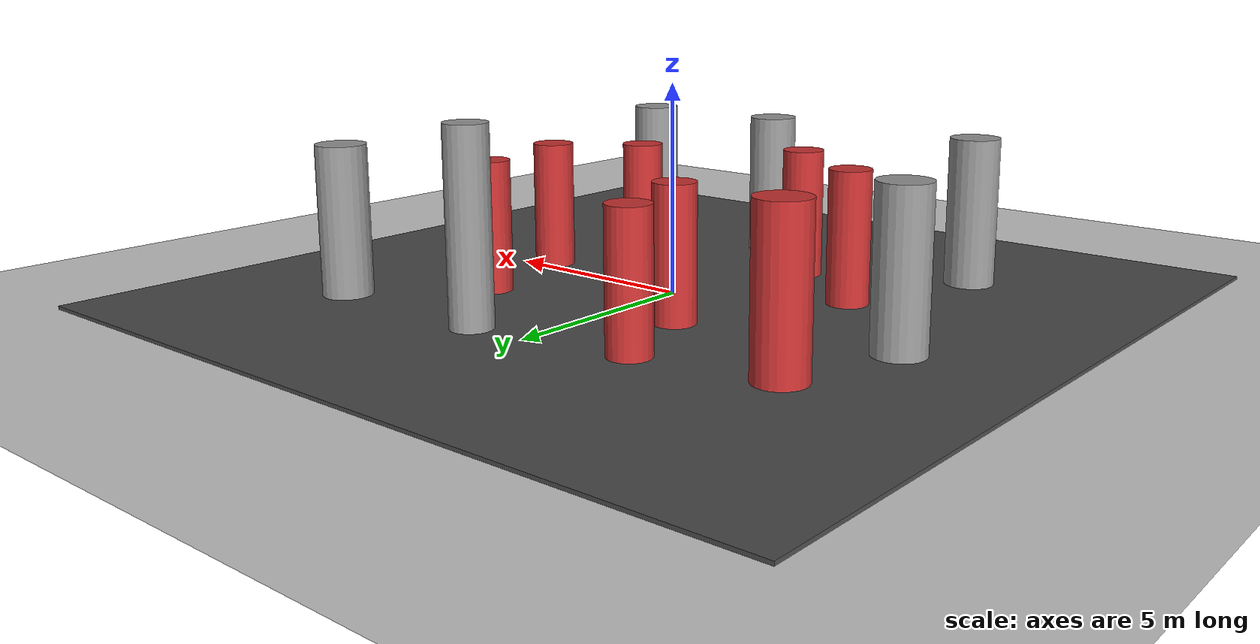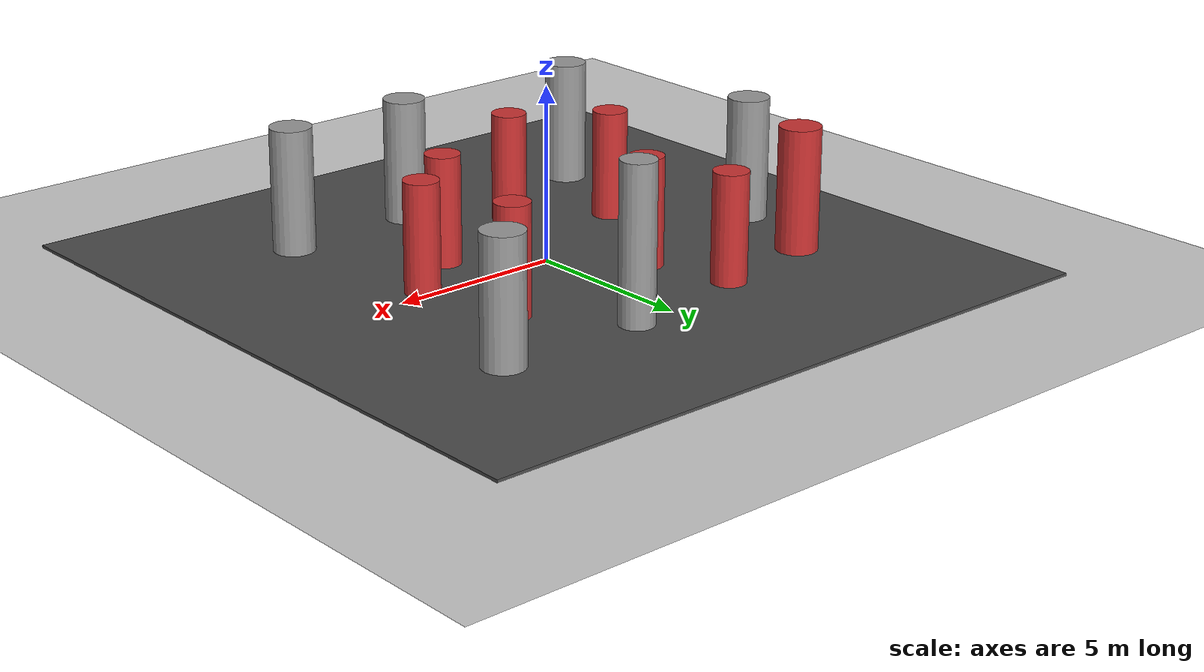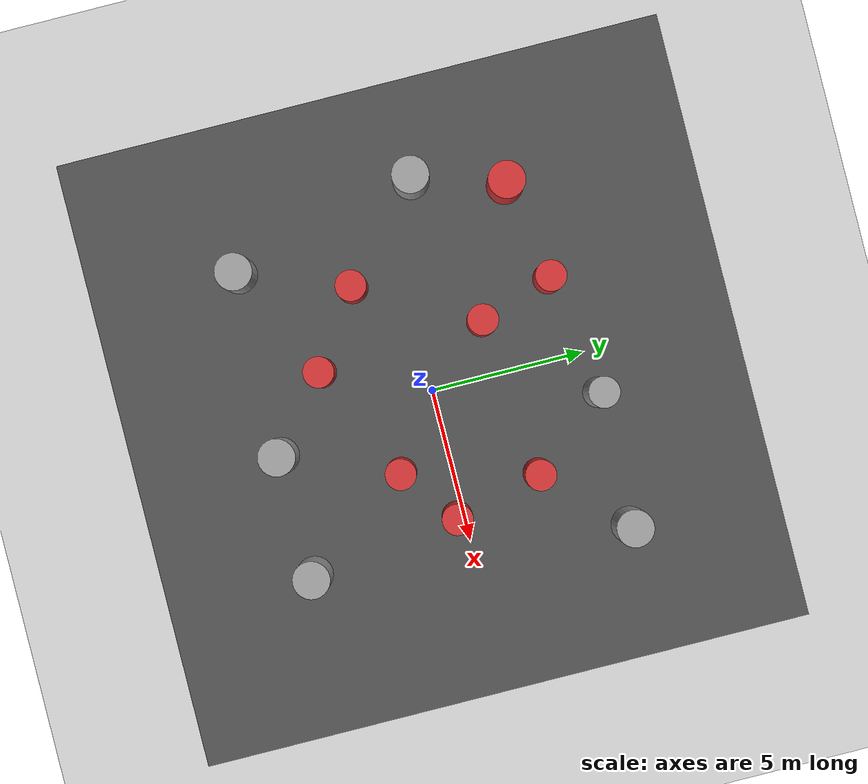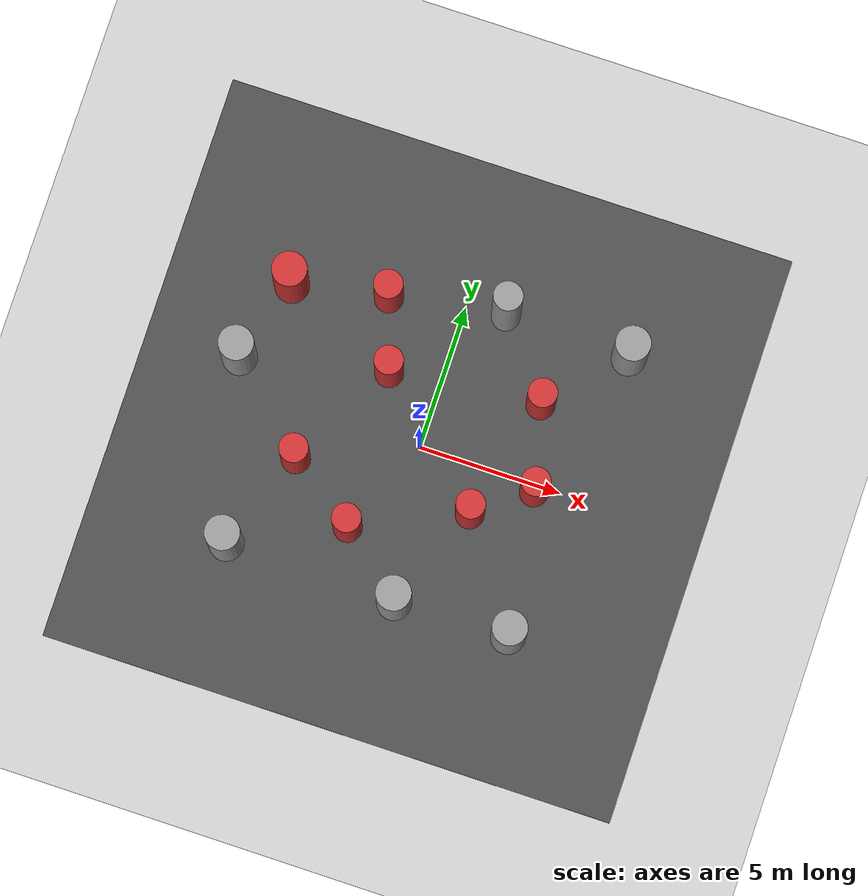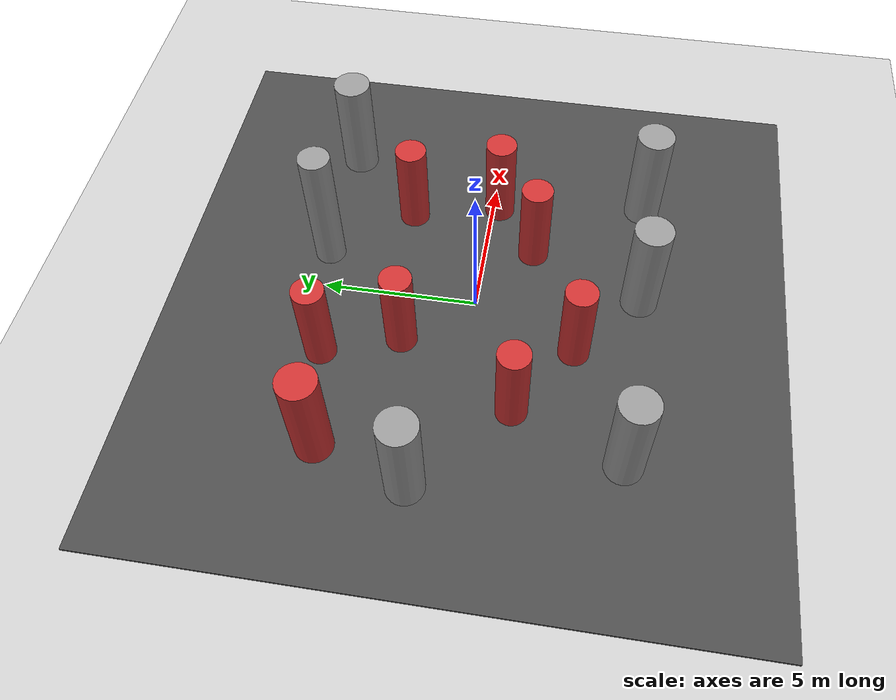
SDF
<sdf version="1.7">
 <world name="default">
  <light name="sun" type="directional">
   <pose>0 0 10 0 -0 0</pose>
   <diffuse>0.8 0.8 0.8 1</diffuse>
   <specular>0.2 0.2 0.2 1</specular>
   <attenuation>
    <range>1000</range>
    <constant>0.9</constant>
    <linear>0.01</linear>
    <quadratic>0.001</quadratic>
   </attenuation>
   <direction>-0.5 0.1 -0.9</direction>
   <spot><inner_angle>0</inner_angle><outer_angle>0</outer_angle><falloff>0</falloff></spot>
  </light>
  <model name="ground_plane">
   <static>1</static>
   <link name="link">
    <collision name="collision">
     <geometry><plane><normal>0 0 1</normal><size>100 100</size></plane></geometry>
     <surface><friction><ode><mu>100</mu><mu2>50</mu2></ode></friction></surface>
    </collision>
    <visual name="visual">
     <cast_shadows>0</cast_shadows>
     <geometry><plane><normal>0 0 1</normal><size>100 100</size></plane></geometry>
     <material>
      <script><uri>file://media/materials/scripts/gazebo.material</uri><name>Gazebo/Grey</name></script>
     </material>
    </visual>
   </link>
  </model>
  <model name="asphalt_plane">
   <static>1</static>
   <link name="link">
    <collision name="collision"><geometry><box><size>20 20 0.1</size></box></geometry></collision>
    <visual name="visual">
     <cast_shadows>0</cast_shadows>
     <geometry><box><size>20 20 0.1</size></box></geometry>
     <material>
      <script>
       <uri>model://asphalt_plane/materials/scripts</uri>
       <uri>model://asphalt_plane/materials/textures</uri>
       <name>vrc/asphalt</name>
      </script>
     </material>
    </visual>
   </link>
  </model>
  <physics name="default_physics" default="0" type="ode">
   <ode>
    <solver>
     <type>quick</type>
     <iters>10</iters>
     <sor>1.3</sor>
     <use_dynamic_moi_rescaling>0</use_dynamic_moi_rescaling>
    </solver>
    <constraints>
     <cfm>0</cfm>
     <erp>0.2</erp>
     <contact_max_correcting_vel>100</contact_max_correcting_vel>
     <contact_surface_layer>0.001</contact_surface_layer>
    </constraints>
   </ode>
   <max_step_size>0.004</max_step_size>
   <real_time_factor>1</real_time_factor>
   <real_time_update_rate>250</real_time_update_rate>
  </physics>
  <gravity>0 0 -9.8066</gravity>
  <magnetic_field>6e-06 2.3e-05 -4.2e-05</magnetic_field>
  <atmosphere type="adiabatic"/>
  <scene><ambient>0.4 0.4 0.4 1</ambient><background>0.7 0.7 0.7 1</background><shadows>1</shadows></scene>
  <spherical_coordinates>
   <surface_model>EARTH_WGS84</surface_model>
   <latitude_deg>0</latitude_deg>
   <longitude_deg>0</longitude_deg>
   <elevation>0</elevation>
   <heading_deg>0</heading_deg>
  </spherical_coordinates>
  <model name="unit_cylinder">
   <pose>-1.76277 2.08742 1.6232 4e-06 5e-06 -0.003591</pose>
   <link name="link">
    <inertial>
     <mass>1</mass>
     <inertia><ixx>0.145833</ixx><ixy>0</ixy><ixz>0</ixz><iyy>0.145833</iyy><iyz>0</iyz><izz>0.125</izz></inertia>
    </inertial>
    <collision name="collision">
     <geometry><cylinder><radius>0.5</radius><length>3.14661</length></cylinder></geometry>
    </collision>
    <visual name="visual">
     <geometry><cylinder><radius>0.5</radius><length>3.14661</length></cylinder></geometry>
     <material>
      <script><name>Gazebo/Grey</name><uri>file://media/materials/scripts/gazebo.material</uri></script>
      <ambient>0.8 0.2 0.2 1</ambient>
      <diffuse>0.8 0.2 0.2 1</diffuse>
     </material>
    </visual>
   </link>
  </model>
  <model name="unit_cylinder_clone">
   <pose>-1.43215 -3.33888 1.62331 -1e-06 9e-06 -0.003122</pose>
   <link name="link">
    <inertial>
     <mass>1</mass>
     <inertia><ixx>0.145833</ixx><ixy>0</ixy><ixz>0</ixz><iyy>0.145833</iyy><iyz>0</iyz><izz>0.125</izz></inertia>
    </inertial>
    <collision name="collision">
     <geometry><cylinder><radius>0.5</radius><length>3.14661</length></cylinder></geometry>
    </collision>
    <visual name="visual">
     <geometry><cylinder><radius>0.5</radius><length>3.14661</length></cylinder></geometry>
     <material>
      <script><name>Gazebo/Grey</name><uri>file://media/materials/scripts/gazebo.material</uri></script>
      <ambient>0.8 0.2 0.2 1</ambient>
      <diffuse>0.8 0.2 0.2 1</diffuse>
     </material>
    </visual>
   </link>
  </model>
  <model name="unit_cylinder_clone_clone">
   <pose>-3.82103 -1.68412 1.62331 1.2e-05 1e-06 -0.003997</pose>
   <link name="link">
    <inertial>
     <mass>1</mass>
     <inertia><ixx>0.145833</ixx><ixy>0</ixy><ixz>0</ixz><iyy>0.145833</iyy><iyz>0</iyz><izz>0.125</izz></inertia>
    </inertial>
    <collision name="collision">
     <geometry><cylinder><radius>0.5</radius><length>3.14661</length></cylinder></geometry>
    </collision>
    <visual name="visual">
     <geometry><cylinder><radius>0.5</radius><length>3.14661</length></cylinder></geometry>
     <material>
      <script><name>Gazebo/Grey</name><uri>file://media/materials/scripts/gazebo.material</uri></script>
      <ambient>0.8 0.2 0.2 1</ambient>
      <diffuse>0.8 0.2 0.2 1</diffuse>
     </material>
    </visual>
   </link>
  </model>
  <model name="unit_cylinder_clone_clone_0">
   <pose>3.42674 2.65056 1.62331 8e-06 1.4e-05 -0.004647</pose>
   <link name="link">
    <inertial>
     <mass>1</mass>
     <inertia><ixx>0.145833</ixx><ixy>0</ixy><ixz>0</ixz><iyy>0.145833</iyy><iyz>0</iyz><izz>0.125</izz></inertia>
    </inertial>
    <collision name="collision">
     <geometry><cylinder><radius>0.5</radius><length>3.14661</length></cylinder></geometry>
    </collision>
    <visual name="visual">
     <geometry><cylinder><radius>0.5</radius><length>3.14661</length></cylinder></geometry>
     <material>
      <script><name>Gazebo/Grey</name><uri>file://media/materials/scripts/gazebo.material</uri></script>
      <ambient>0.8 0.2 0.2 1</ambient>
      <diffuse>0.8 0.2 0.2 1</diffuse>
     </material>
    </visual>
   </link>
  </model>
  <model name="unit_cylinder_clone_clone_1">
   <pose>4.13783 -0.228872 1.62331 -6e-06 2.1e-05 -0.004332</pose>
   <link name="link">
    <inertial>
     <mass>1</mass>
     <inertia><ixx>0.145833</ixx><ixy>0</ixy><ixz>0</ixz><iyy>0.145833</iyy><iyz>0</iyz><izz>0.125</izz></inertia>
    </inertial>
    <collision name="collision">
     <geometry><cylinder><radius>0.5</radius><length>3.14661</length></cylinder></geometry>
    </collision>
    <visual name="visual">
     <geometry><cylinder><radius>0.5</radius><length>3.14661</length></cylinder></geometry>
     <material>
      <script><name>Gazebo/Grey</name><uri>file://media/materials/scripts/gazebo.material</uri></script>
      <ambient>0.8 0.2 0.2 1</ambient>
      <diffuse>0.8 0.2 0.2 1</diffuse>
     </material>
    </visual>
   </link>
  </model>
  <model name="unit_cylinder_clone_clone_2">
   <pose>2.32325 -1.61957 1.62331 1.7e-05 -2e-06 -0.00362</pose>
   <link name="link">
    <inertial>
     <mass>1</mass>
     <inertia><ixx>0.145833</ixx><ixy>0</ixy><ixz>0</ixz><iyy>0.145833</iyy><iyz>0</iyz><izz>0.125</izz></inertia>
    </inertial>
    <collision name="collision">
     <geometry><cylinder><radius>0.5</radius><length>3.14661</length></cylinder></geometry>
    </collision>
    <visual name="visual">
     <geometry><cylinder><radius>0.5</radius><length>3.14661</length></cylinder></geometry>
     <material>
      <script><name>Gazebo/Grey</name><uri>file://media/materials/scripts/gazebo.material</uri></script>
      <ambient>0.8 0.2 0.2 1</ambient>
      <diffuse>0.8 0.2 0.2 1</diffuse>
     </material>
    </visual>
   </link>
  </model>
  <model name="unit_cylinder_clone_clone_3">
   <pose>-2.57812 4.50145 1.62331 1e-06 -5e-06 -0.003791</pose>
   <link name="link">
    <inertial>
     <mass>1</mass>
     <inertia><ixx>0.145833</ixx><ixy>0</ixy><ixz>0</ixz><iyy>0.145833</iyy><iyz>0</iyz><izz>0.125</izz></inertia>
    </inertial>
    <collision name="collision">
     <geometry><cylinder><radius>0.5</radius><length>3.14661</length></cylinder></geometry>
    </collision>
    <visual name="visual">
     <geometry><cylinder><radius>0.5</radius><length>3.14661</length></cylinder></geometry>
     <material>
      <script><name>Gazebo/Grey</name><uri>file://media/materials/scripts/gazebo.material</uri></script>
      <ambient>0.8 0.2 0.2 1</ambient>
      <diffuse>0.8 0.2 0.2 1</diffuse>
     </material>
    </visual>
   </link>
  </model>
  <model name="unit_cylinder_clone_clone_2_clone_clone">
   <pose>-5.8235 3.88158 1.62331 1.7e-05 -2e-06 -0.00362</pose>
   <link name="link">
    <inertial>
     <mass>1</mass>
     <inertia><ixx>0.145833</ixx><ixy>0</ixy><ixz>0</ixz><iyy>0.145833</iyy><iyz>0</iyz><izz>0.125</izz></inertia>
    </inertial>
    <collision name="collision">
     <geometry><cylinder><radius>0.599361</radius><length>4.02322</length></cylinder></geometry>
    </collision>
    <visual name="visual">
     <geometry><cylinder><radius>0.599361</radius><length>4.02322</length></cylinder></geometry>
     <material>
      <script><name>Gazebo/Grey</name><uri>file://media/materials/scripts/gazebo.material</uri></script>
      <ambient>0.8 0.2 0.2 1</ambient>
      <diffuse>0.8 0.2 0.2 1</diffuse>
     </material>
    </visual>
   </link>
  </model>
  <model name="unit_cylinder_clone_clone_2_clone_clone_clone">
   <pose>4.83269 -5.13935 1.62331 1.7e-05 -2e-06 -0.00362</pose>
   <link name="link">
    <inertial>
     <mass>1</mass>
     <inertia><ixx>0.145833</ixx><ixy>0</ixy><ixz>0</ixz><iyy>0.145833</iyy><iyz>0</iyz><izz>0.125</izz></inertia>
    </inertial>
    <collision name="collision">
     <geometry><cylinder><radius>0.599361</radius><length>4.02322</length></cylinder></geometry>
    </collision>
    <visual name="visual">
     <geometry><cylinder><radius>0.599361</radius><length>4.02322</length></cylinder></geometry>
     <material>
      <script><name>Gazebo/Grey</name><uri>file://media/materials/scripts/gazebo.material</uri></script>
      <ambient>0.8 0.8 0.8 1</ambient>
      <diffuse>0.8 0.8 0.8 1</diffuse>
     </material>
    </visual>
   </link>
  </model>
  <model name="unit_cylinder_clone_clone_2_clone_clone_clone_clone">
   <pose>5.75981 5.09769 1.62331 1.7e-05 -2e-06 -0.00362</pose>
   <link name="link">
    <inertial>
     <mass>1</mass>
     <inertia><ixx>0.145833</ixx><ixy>0</ixy><ixz>0</ixz><iyy>0.145833</iyy><iyz>0</iyz><izz>0.125</izz></inertia>
    </inertial>
    <collision name="collision">
     <geometry><cylinder><radius>0.599361</radius><length>4.02322</length></cylinder></geometry>
    </collision>
    <visual name="visual">
     <geometry><cylinder><radius>0.599361</radius><length>4.02322</length></cylinder></geometry>
     <material>
      <script><name>Gazebo/Grey</name><uri>file://media/materials/scripts/gazebo.material</uri></script>
      <ambient>0.8 0.8 0.8 1</ambient>
      <diffuse>0.8 0.8 0.8 1</diffuse>
     </material>
    </visual>
   </link>
  </model>
  <model name="unit_cylinder_clone_clone_2_clone_clone_clone_clone_clone">
   <pose>0.844517 -5.25389 1.62331 1.7e-05 -2e-06 -0.00362</pose>
   <link name="link">
    <inertial>
     <mass>1</mass>
     <inertia><ixx>0.145833</ixx><ixy>0</ixy><ixz>0</ixz><iyy>0.145833</iyy><iyz>0</iyz><izz>0.125</izz></inertia>
    </inertial>
    <collision name="collision">
     <geometry><cylinder><radius>0.599361</radius><length>4.02322</length></cylinder></geometry>
    </collision>
    <visual name="visual">
     <geometry><cylinder><radius>0.599361</radius><length>4.02322</length></cylinder></geometry>
     <material>
      <script><name>Gazebo/Grey</name><uri>file://media/materials/scripts/gazebo.material</uri></script>
      <ambient>0.8 0.8 0.8 1</ambient>
      <diffuse>0.8 0.8 0.8 1</diffuse>
     </material>
    </visual>
   </link>
  </model>
  <model name="unit_cylinder_clone_clone_2_clone_clone_clone_clone_clone_clone">
   <pose>-5.13188 -5.13503 1.62331 1.7e-05 -2e-06 -0.00362</pose>
   <link name="link">
    <inertial>
     <mass>1</mass>
     <inertia><ixx>0.145833</ixx><ixy>0</ixy><ixz>0</ixz><iyy>0.145833</iyy><iyz>0</iyz><izz>0.125</izz></inertia>
    </inertial>
    <collision name="collision">
     <geometry><cylinder><radius>0.599361</radius><length>4.02322</length></cylinder></geometry>
    </collision>
    <visual name="visual">
     <geometry><cylinder><radius>0.599361</radius><length>4.02322</length></cylinder></geometry>
     <material>
      <script><name>Gazebo/Grey</name><uri>file://media/materials/scripts/gazebo.material</uri></script>
      <ambient>0.8 0.8 0.8 1</ambient>
      <diffuse>0.8 0.8 0.8 1</diffuse>
     </material>
    </visual>
   </link>
  </model>
  <model name="unit_cylinder_clone_clone_2_clone_clone_clone_clone_clone_clone_clone">
   <pose>-6.71752 0.987036 1.62331 1.7e-05 -2e-06 -0.00362</pose>
   <link name="link">
    <inertial>
     <mass>1</mass>
     <inertia><ixx>0.145833</ixx><ixy>0</ixy><ixz>0</ixz><iyy>0.145833</iyy><iyz>0</iyz><izz>0.125</izz></inertia>
    </inertial>
    <collision name="collision">
     <geometry><cylinder><radius>0.599361</radius><length>4.02322</length></cylinder></geometry>
    </collision>
    <visual name="visual">
     <geometry><cylinder><radius>0.599361</radius><length>4.02322</length></cylinder></geometry>
     <material>
      <script><name>Gazebo/Grey</name><uri>file://media/materials/scripts/gazebo.material</uri></script>
      <ambient>0.8 0.8 0.8 1</ambient>
      <diffuse>0.8 0.8 0.8 1</diffuse>
     </material>
    </visual>
   </link>
  </model>
  <model name="unit_cylinder_clone_clone_0_clone">
   <pose>1.37016 5.15925 1.62331 8e-06 1.4e-05 -0.004647</pose>
   <link name="link">
    <inertial>
     <mass>1</mass>
     <inertia><ixx>0.145833</ixx><ixy>0</ixy><ixz>0</ixz><iyy>0.145833</iyy><iyz>0</iyz><izz>0.125</izz></inertia>
    </inertial>
    <collision name="collision">
     <geometry><cylinder><radius>0.5</radius><length>5.78561</length></cylinder></geometry>
    </collision>
    <visual name="visual">
     <geometry><cylinder><radius>0.5</radius><length>5.78561</length></cylinder></geometry>
     <material>
      <script><name>Gazebo/Grey</name><uri>file://media/materials/scripts/gazebo.material</uri></script>
      <ambient>0.8 0.8 0.8 1</ambient>
      <diffuse>0.8 0.8 0.8 1</diffuse>
     </material>
    </visual>
   </link>
  </model>
 </world>
</sdf>
